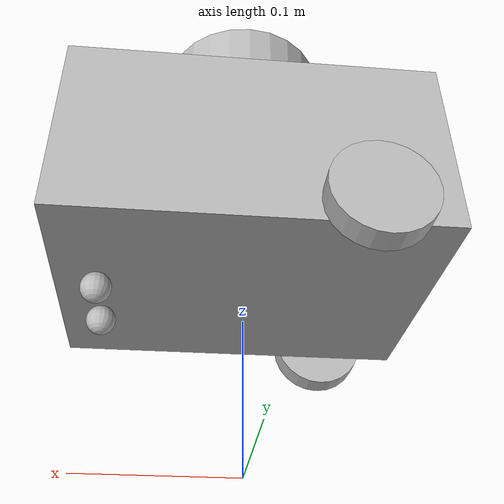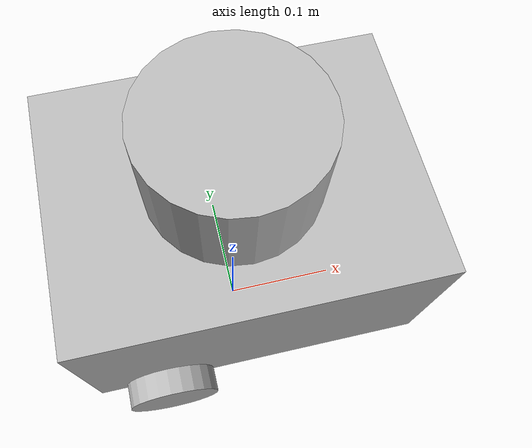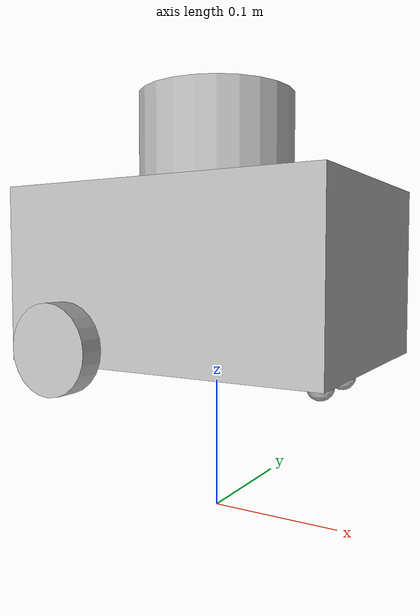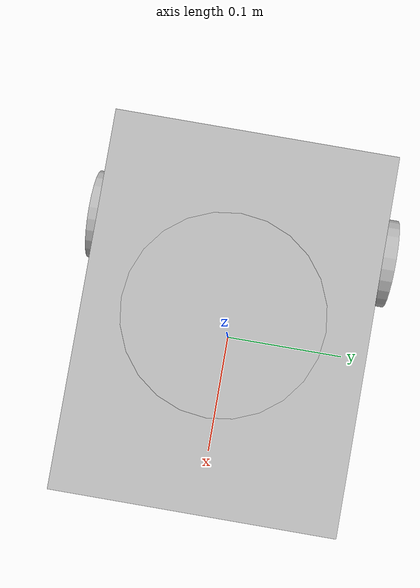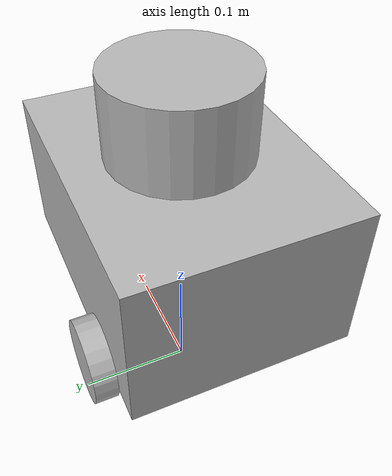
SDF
<?xml version='1.0'?>
<sdf version='1.4'>
  <model name="diffdam_robot">
        <pose>0 0 0.097 0 0 0</pose>
        <link name='chassis'>
          <pose>0 0 0.087 0 0 3.14</pose>
          <inertial>
            <inertia>
              <ixx>0.0395416666667</ixx>
              <ixy>0.000</ixy>
              <ixz>0.000</ixz>
              <iyy>0.106208333333</iyy>
              <iyz>0.000</iyz>
              <izz>0.106208333333</izz>
            </inertia>
            <mass>100</mass>
          </inertial>
          <visual name='visual'>
            <geometry>
              <box>
                <size>.249 .187 .13</size>
              </box>
            </geometry>
          </visual>
          <collision name='collision'>
            <geometry>
              <box>
                <size>0.249 0.187 0.13</size>
              </box>
            </geometry>
          </collision>

          <visual name='caster_right_visual'>
            <pose>-0.095 0.0225 -0.076 0 0 0</pose>
            <geometry>
              <sphere>
                <radius>0.01</radius>
              </sphere>
            </geometry>
          </visual>
          <collision name='caster_collision_right'>
            <pose>-0.095 0.0225 -0.076 0 0 0</pose>
            <geometry>
              <sphere>
                <radius>0.01</radius>
              </sphere>
            </geometry>
            <surface>
              <friction>
                <ode>
                  <mu>0</mu>
                  <mu2>0</mu2>
                  <slip1>1</slip1>
                  <slip2>1</slip2>
                </ode>
              </friction>
            </surface>
          </collision>

          <visual name='caster_left_visual'>
            <pose>-0.095 -0.0225 -0.076 0 0 0</pose>
            <geometry>
              <sphere>
                <radius>0.01</radius>
              </sphere>
            </geometry>
          </visual>
          <collision name='caster_collision_left'>
            <pose>-0.095 -0.0225 -0.076 0 0 0</pose>
            <geometry>
              <sphere>
                <radius>0.01</radius>
              </sphere>
            </geometry>
            <surface>
              <friction>
                <ode>
                  <mu>0</mu>
                  <mu2>0</mu2>
                  <slip1>1</slip1>
                  <slip2>1</slip2>
                </ode>
              </friction>
            </surface>
          </collision>
        </link>

        <link name="left_wheel">
          <pose>-0.07 0.104 0.035 0 1.5707 1.5707</pose>
          <inertial>
            <mass>100.0</mass>
            <inertia>
            </inertia>
          </inertial>
          <collision name="collision">
            <geometry>
              <cylinder>
                <radius>0.033</radius>
                <length>0.018</length>
              </cylinder>
            </geometry>
            <surface>
              <friction>
                <ode>
                  <mu>100000.0</mu>
                  <mu2>100000.0</mu2>
                </ode>
              </friction>
            </surface>
          </collision>
          <visual name="visual">
            <geometry>
              <cylinder>
                <radius>.033</radius>
                <length>.018</length>
              </cylinder>
            </geometry>
          </visual>
        </link>

        <link name="right_wheel">
          <pose>-0.07 -0.104 0.035 0 1.5707 1.5707</pose>
          <inertial>
            <mass>100.0</mass>
            <inertia>
            </inertia>
          </inertial>
          <collision name="collision">
            <geometry>
              <cylinder>
                <radius>0.033</radius>
                <length>0.018</length>
              </cylinder>
            </geometry>
            <surface>
              <friction>
                <ode>
                  <mu>100000.0</mu>
                  <mu2>100000.0</mu2>
                </ode>
              </friction>
            </surface>
          </collision>
          <visual name="visual">
            <geometry>
              <cylinder>
                <radius>.033</radius>
                <length>.018</length>
              </cylinder>
            </geometry>
          </visual>
        </link>

        <joint type="revolute" name="left_wheel_hinge">
          <pose>0 0 0 0 0 0</pose>
          <child>left_wheel</child>
          <parent>chassis</parent>
          <axis>
            <xyz>0 1 0</xyz>
          </axis>
        </joint>

        <joint type="revolute" name="right_wheel_hinge">
          <pose>0 0 0 0 0 0</pose>
          <child>right_wheel</child>
          <parent>chassis</parent>
          <axis>
            <xyz>0 1 0</xyz>
          </axis>
        </joint>

        <link name="rplidar">
          <pose>0 0 0.187 0 0 0</pose>
          <inertial>
            <mass>0.17</mass>
            <inertia>
            </inertia>
          </inertial>
          <collision name="rplidar_collision">
            <geometry>
              <cylinder>
                <radius>.06</radius>
                <length>.072</length>
              </cylinder>
            </geometry>
          </collision>
          <visual name="rplidar_visual">
            <geometry>
              <cylinder>
                <radius>.06</radius>
                <length>.072</length>
              </cylinder>
            </geometry>
          </visual>

          <sensor type="ray" name="rplidar_sensor">
            <pose>0 0 0.01 0 0 0</pose>
            <ray>
              <scan>
                <horizontal>
                  <sample>2000</sample>
                  <resolution>1</resolution>
                  <min_angle>0</min_angle>
                  <max_angle>6.28</max_angle>
                </horizontal>
              </scan>
              <range>
                <min>0.15</min>
                <max>4</max>
              </range>
            </ray>
            <always_on>true</always_on>
            <update_rate>30</update_rate>
            <visualize>true</visualize>
            <plugin name="laser" filename="libgazebo_ros_ray_sensor.so">
              <ros>
                <remapping>~/out:=laser_scan</remapping>
                <qos>
                  <topic name="/laser_scan">
                  <publisher>
                    <reliability>reliable</reliability>
                  </publisher>
                  </topic>
                </qos>
              </ros>
              <output_type>sensor_msgs/LaserScan</output_type>
            </plugin>
          </sensor>
        </link>

        <joint name="lidar_joint" type="fixed">
          <parent>chassis</parent>
          <child>rplidar</child>
          <pose>0 0 0 0 0 0</pose>
        </joint>

        <plugin name='diff_drive' filename='libgazebo_ros_diff_drive.so'>

          <ros>
            <namespace>/diffdam_robot</namespace>
          </ros>

          <!-- wheels -->
          <left_joint>left_wheel_hinge</left_joint>
          <right_joint>right_wheel_hinge</right_joint>

          <!-- kinematics -->
          <wheel_separation>0.187</wheel_separation>
          <wheel_diameter>0.066</wheel_diameter>

          <!-- limits -->
          <max_wheel_torque>20</max_wheel_torque>
          <max_wheel_acceleration>1.0</max_wheel_acceleration>

          <!-- output -->
          <publish_odom>true</publish_odom>
          <publish_odom_tf>true</publish_odom_tf>

          <odometry_frame>odom</odometry_frame>
          <robot_base_frame>base_footprint</robot_base_frame>

        </plugin>

  </model>
</sdf>
